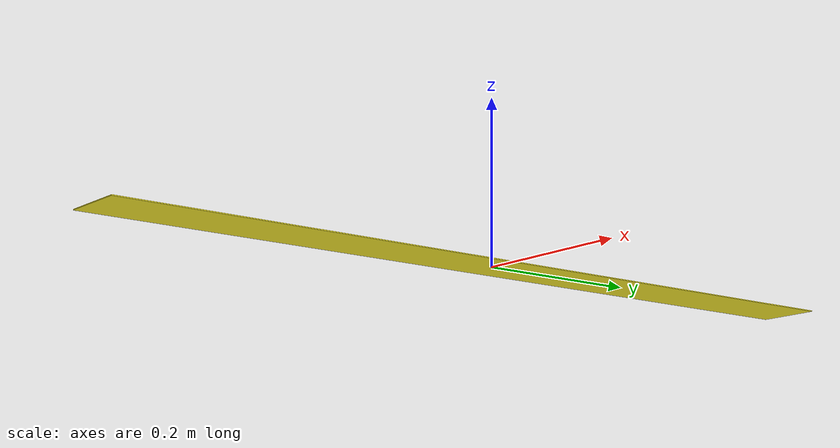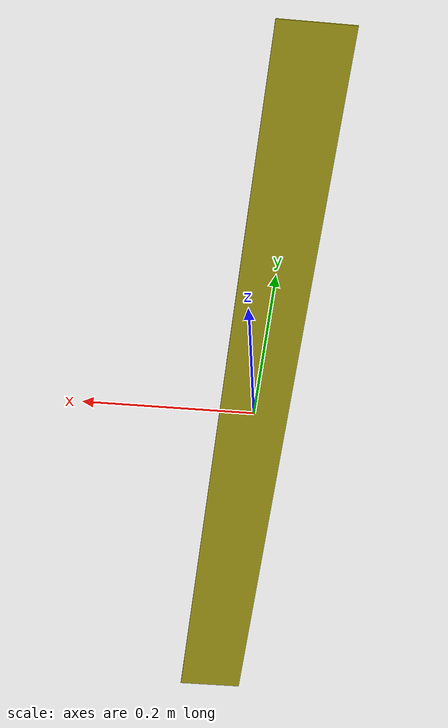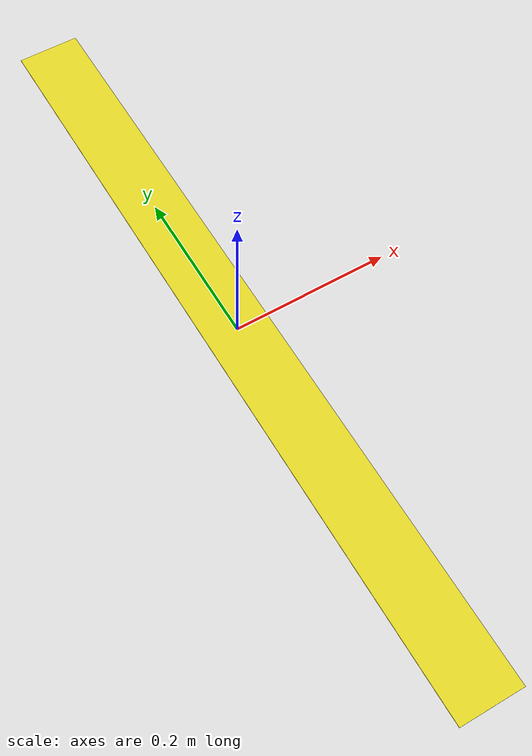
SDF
<?xml version='1.0'?>
<sdf version='1.6'>
  <model name='lane_yellow_short'>
    <link name='main'>
    <pose frame=''>0 0 0 0 0 0</pose>
      <visual name='main_Visual'>
        <geometry>
          <box>
          <size>0.08 1 0.001</size>
          </box>
        </geometry>
           <material>
          <script>
            <name>Gazebo/Yellow</name>
            <uri>file://media/materials/scripts/gazebo.material</uri>
          </script>
        </material>
      </visual>
     </link>
    <static>1</static>
  </model>
</sdf>
